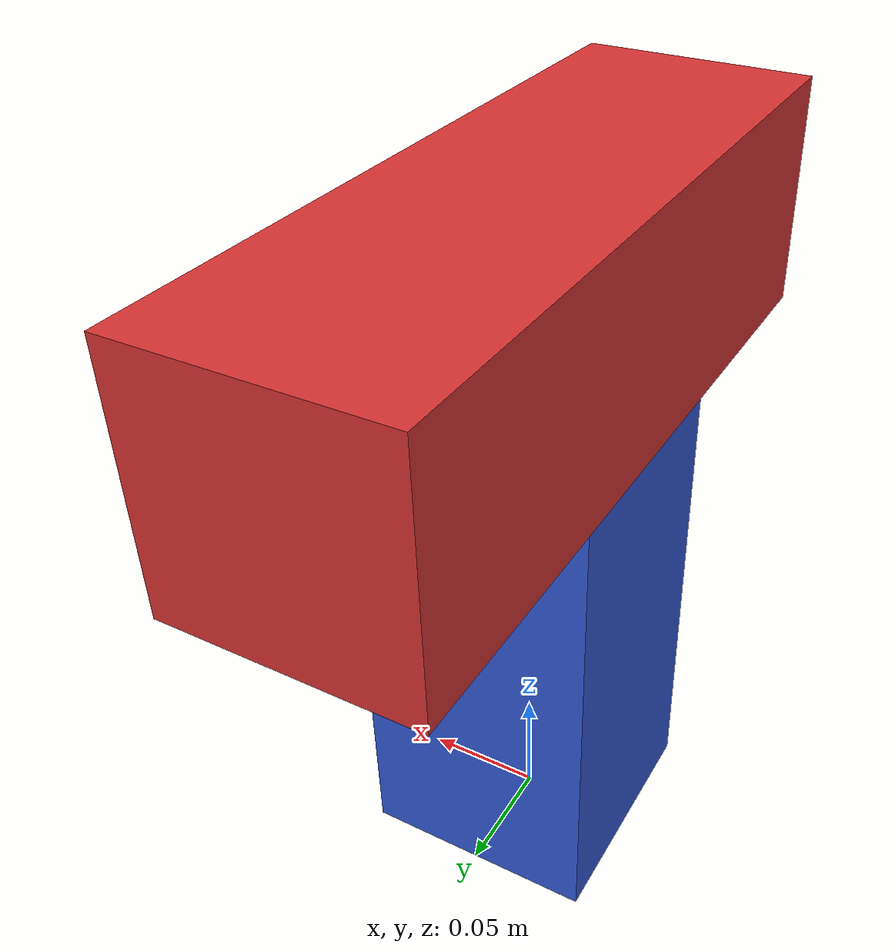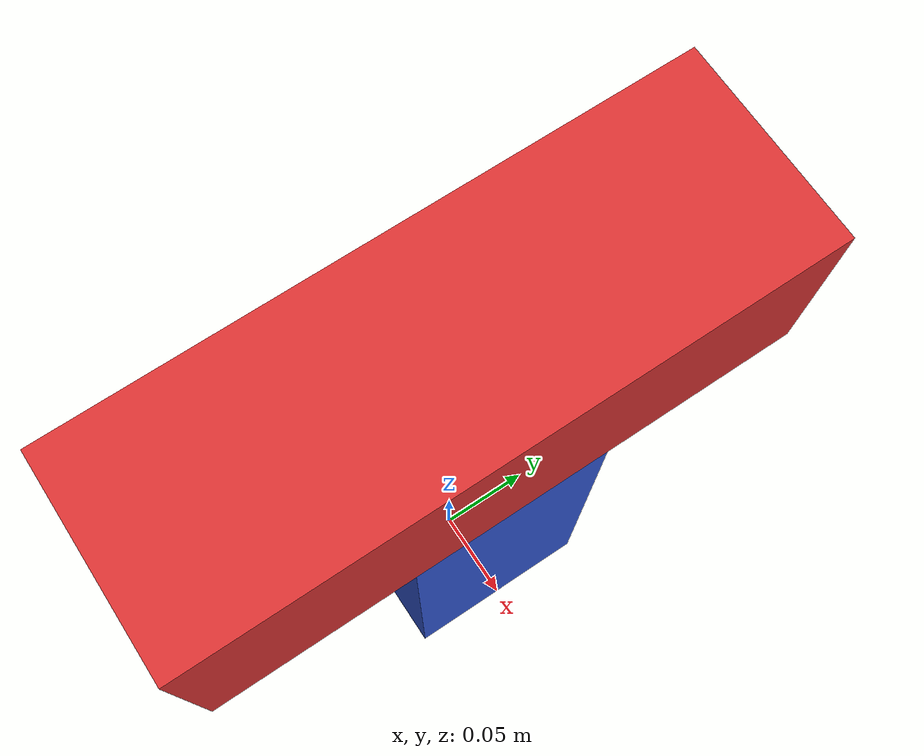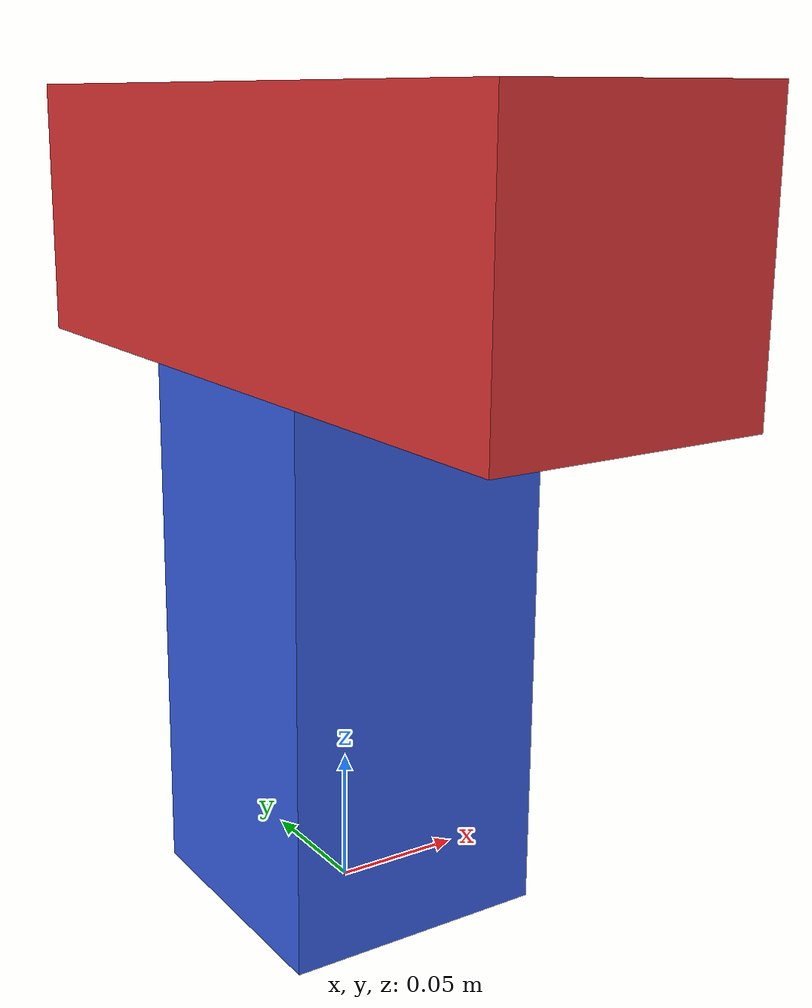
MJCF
<mujoco model="payload_box">
  <worldbody>
    <body name="box_mount" pos="0 0 0">
      <body name="blue_body" pos="0 0 0">
        <geom name="box_blue" type="box" pos="0 0 0.1" size="0.05 0.05 0.1"
          rgba="0.2 0.35 0.85 1" density="200"/>
        <body name="red_body" pos="0 0 0.2">
          <geom name="box_red" type="box" pos="0 0 0.05" size="0.05 0.15 0.05"
            rgba="0.85 0.2 0.2 1" density="200"/>
        </body>
      </body>
    </body>
  </worldbody>
</mujoco>
